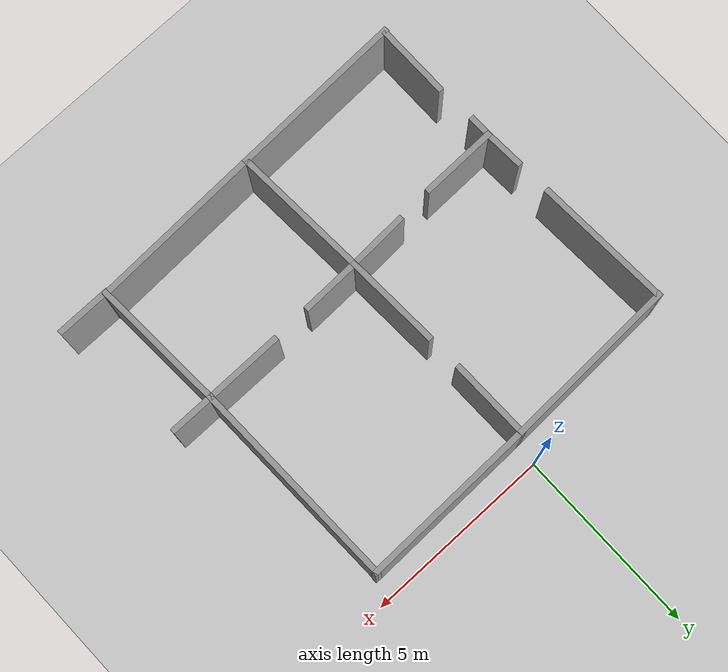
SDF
<sdf version="1.7">
 <world name="default">
  <light name="sun" type="directional">
   <pose>0 0 10 0 -0 0</pose>
   <diffuse>0.8 0.8 0.8 1</diffuse>
   <specular>0.2 0.2 0.2 1</specular>
   <attenuation>
    <range>1000</range>
    <constant>0.9</constant>
    <linear>0.01</linear>
    <quadratic>0.001</quadratic>
   </attenuation>
   <direction>-0.5 0.1 -0.9</direction>
   <spot><inner_angle>0</inner_angle><outer_angle>0</outer_angle><falloff>0</falloff></spot>
  </light>
  <model name="ground_plane">
   <static>1</static>
   <link name="link">
    <collision name="collision">
     <geometry><plane><normal>0 0 1</normal><size>100 100</size></plane></geometry>
     <surface>
      <contact><collide_bitmask>65535</collide_bitmask></contact>
      <friction><ode><mu>100</mu><mu2>50</mu2></ode></friction>
     </surface>
    </collision>
    <visual name="visual">
     <cast_shadows>0</cast_shadows>
     <geometry><plane><normal>0 0 1</normal><size>100 100</size></plane></geometry>
     <material>
      <script><uri>file://media/materials/scripts/gazebo.material</uri><name>Gazebo/Grey</name></script>
     </material>
    </visual>
   </link>
  </model>
  <gravity>0 0 -9.8</gravity>
  <magnetic_field>6e-06 2.3e-05 -4.2e-05</magnetic_field>
  <atmosphere type="adiabatic"/>
  <physics type="ode">
   <max_step_size>0.001</max_step_size>
   <real_time_factor>1</real_time_factor>
   <real_time_update_rate>1000</real_time_update_rate>
  </physics>
  <scene><ambient>0.4 0.4 0.4 1</ambient><background>0.7 0.7 0.7 1</background><shadows>1</shadows></scene>
  <spherical_coordinates>
   <surface_model>EARTH_WGS84</surface_model>
   <latitude_deg>0</latitude_deg>
   <longitude_deg>0</longitude_deg>
   <elevation>0</elevation>
   <heading_deg>0</heading_deg>
  </spherical_coordinates>
  <model name="Bordeaux_model">
   <pose>0.823348 -4.94039 0 0 -0 0</pose>
   <link name="Wall_0">
    <collision name="Wall_0_Collision">
     <geometry><box><size>2.19295 0.15 2.5</size></box></geometry>
     <pose>0 0 1.25 0 -0 0</pose>
    </collision>
    <visual name="Wall_0_Visual">
     <pose>0 0 1.25 0 -0 0</pose>
     <geometry><box><size>2.19295 0.15 2.5</size></box></geometry>
     <material>
      <script><uri>file://media/materials/scripts/gazebo.material</uri><name>Gazebo/Grey</name></script>
      <ambient>1 1 1 1</ambient>
     </material>
     <meta><layer>0</layer></meta>
    </visual>
    <pose>-0.802706 3.27041 0 0 -0 1.58202</pose>
   </link>
   <link name="Wall_1">
    <collision name="Wall_1_Collision">
     <geometry><box><size>4.75121 0.15 2.5</size></box></geometry>
     <pose>0 0 1.25 0 -0 0</pose>
    </collision>
    <visual name="Wall_1_Visual">
     <pose>0 0 1.25 0 -0 0</pose>
     <geometry><box><size>4.75121 0.15 2.5</size></box></geometry>
     <material>
      <script><uri>file://media/materials/scripts/gazebo.material</uri><name>Gazebo/Grey</name></script>
      <ambient>1 1 1 1</ambient>
     </material>
     <meta><layer>0</layer></meta>
    </visual>
    <pose>1.48603 4.33467 0 0 -0 0.018623</pose>
   </link>
   <link name="Wall_10">
    <collision name="Wall_10_Collision">
     <geometry><box><size>1.62867 0.15 2.5</size></box></geometry>
     <pose>0 0 1.25 0 -0 0</pose>
    </collision>
    <visual name="Wall_10_Visual">
     <pose>0 0 1.25 0 -0 0</pose>
     <geometry><box><size>1.62867 0.15 2.5</size></box></geometry>
     <material>
      <script><uri>file://media/materials/scripts/gazebo.material</uri><name>Gazebo/Grey</name></script>
      <ambient>1 1 1 1</ambient>
     </material>
     <meta><layer>0</layer></meta>
    </visual>
    <pose>0.072368 -1.16797 0 0 -0 0.023525</pose>
   </link>
   <link name="Wall_15">
    <collision name="Wall_15_Collision">
     <geometry><box><size>2.06988 0.15 2.5</size></box></geometry>
     <pose>0 0 1.25 0 -0 0</pose>
    </collision>
    <visual name="Wall_15_Visual">
     <pose>0 0 1.25 0 -0 0</pose>
     <geometry><box><size>2.06988 0.15 2.5</size></box></geometry>
     <material>
      <script><uri>file://media/materials/scripts/gazebo.material</uri><name>Gazebo/Grey</name></script>
      <ambient>1 1 1 1</ambient>
     </material>
     <meta><layer>0</layer></meta>
    </visual>
    <pose>-4.1135 -1.32232 0 0 -0 -3.12348</pose>
   </link>
   <link name="Wall_18">
    <collision name="Wall_18_Collision">
     <geometry><box><size>1.14009 0.15 2.5</size></box></geometry>
     <pose>0 0 1.25 0 -0 0</pose>
    </collision>
    <visual name="Wall_18_Visual">
     <pose>0 0 1.25 0 -0 0</pose>
     <geometry><box><size>1.14009 0.15 2.5</size></box></geometry>
     <material>
      <script><uri>file://media/materials/scripts/gazebo.material</uri><name>Gazebo/Grey</name></script>
      <ambient>1 1 1 1</ambient>
     </material>
     <meta><layer>0</layer></meta>
    </visual>
    <pose>-5.10372 -0.853844 0 0 -0 1.61472</pose>
   </link>
   <link name="Wall_24">
    <collision name="Wall_24_Collision">
     <geometry><box><size>3.66561 0.15 2.5</size></box></geometry>
     <pose>0 0 1.25 0 -0 0</pose>
    </collision>
    <visual name="Wall_24_Visual">
     <pose>0 0 1.25 0 -0 0</pose>
     <geometry><box><size>3.66561 0.15 2.5</size></box></geometry>
     <material>
      <script><uri>file://media/materials/scripts/gazebo.material</uri><name>Gazebo/Grey</name></script>
      <ambient>1 1 1 1</ambient>
     </material>
     <meta><layer>0</layer></meta>
    </visual>
    <pose>-5.24798 2.37481 0 0 -0 1.61659</pose>
   </link>
   <link name="Wall_29">
    <collision name="Wall_29_Collision">
     <geometry><box><size>4.66715 0.15 2.5</size></box></geometry>
     <pose>0 0 1.25 0 -0 0</pose>
    </collision>
    <visual name="Wall_29_Visual">
     <pose>0 0 1.25 0 -0 0</pose>
     <geometry><box><size>4.66715 0.15 2.5</size></box></geometry>
     <material>
      <script><uri>file://media/materials/scripts/gazebo.material</uri><name>Gazebo/Grey</name></script>
      <ambient>1 1 1 1</ambient>
     </material>
     <meta><layer>0</layer></meta>
    </visual>
    <pose>-3.08281 4.2113 0 0 -0 -3.10593</pose>
   </link>
   <link name="Wall_31">
    <collision name="Wall_31_Collision">
     <geometry><box><size>2.12312 0.15 2.5</size></box></geometry>
     <pose>0 0 1.25 0 -0 0</pose>
    </collision>
    <visual name="Wall_31_Visual">
     <pose>0 0 1.25 0 -0 0</pose>
     <geometry><box><size>2.12312 0.15 2.5</size></box></geometry>
     <material>
      <script><uri>file://media/materials/scripts/gazebo.material</uri><name>Gazebo/Grey</name></script>
      <ambient>1 1 1 1</ambient>
     </material>
     <meta><layer>0</layer></meta>
    </visual>
    <pose>2.87076 -1.12108 0 0 -0 0.002726</pose>
   </link>
   <link name="Wall_36">
    <collision name="Wall_36_Collision">
     <geometry><box><size>3.69296 0.15 2.5</size></box></geometry>
     <pose>0 0 1.25 0 -0 0</pose>
    </collision>
    <visual name="Wall_36_Visual">
     <pose>0 0 1.25 0 -0 0</pose>
     <geometry><box><size>3.69296 0.15 2.5</size></box></geometry>
     <material>
      <script><uri>file://media/materials/scripts/gazebo.material</uri><name>Gazebo/Grey</name></script>
      <ambient>1 1 1 1</ambient>
     </material>
     <meta><layer>0</layer></meta>
    </visual>
    <pose>-0.579263 -2.95468 0 0 -0 -1.52138</pose>
   </link>
   <link name="Wall_39">
    <collision name="Wall_39_Collision">
     <geometry><box><size>0.5 0.15 2.5</size></box></geometry>
     <pose>0 0 1.25 0 -0 0</pose>
    </collision>
    <visual name="Wall_39_Visual">
     <pose>0 0 1.25 0 -0 0</pose>
     <geometry><box><size>0.5 0.15 2.5</size></box></geometry>
     <material>
      <script><uri>file://media/materials/scripts/gazebo.material</uri><name>Gazebo/Grey</name></script>
      <ambient>1 1 1 1</ambient>
     </material>
     <meta><layer>0</layer></meta>
    </visual>
    <pose>-5.07922 -1.67326 0 0 -0 1.5708</pose>
   </link>
   <link name="Wall_4">
    <collision name="Wall_4_Collision">
     <geometry><box><size>2.58883 0.15 2.5</size></box></geometry>
     <pose>0 0 1.25 0 -0 0</pose>
    </collision>
    <visual name="Wall_4_Visual">
     <pose>0 0 1.25 0 -0 0</pose>
     <geometry><box><size>2.58883 0.15 2.5</size></box></geometry>
     <material>
      <script><uri>file://media/materials/scripts/gazebo.material</uri><name>Gazebo/Grey</name></script>
      <ambient>1 1 1 1</ambient>
     </material>
     <meta><layer>0</layer></meta>
    </visual>
    <pose>-0.714589 0.033113 0 0 -0 -1.53157</pose>
   </link>
   <link name="Wall_43">
    <collision name="Wall_43_Collision">
     <geometry><box><size>2 0.15 2.5</size></box></geometry>
     <pose>0 0 1.25 0 -0 0</pose>
    </collision>
    <visual name="Wall_43_Visual">
     <pose>0 0 1.25 0 -0 0</pose>
     <geometry><box><size>2 0.15 2.5</size></box></geometry>
     <material>
      <script><uri>file://media/materials/scripts/gazebo.material</uri><name>Gazebo/Grey</name></script>
      <ambient>1 1 1 1</ambient>
     </material>
     <meta><layer>0</layer></meta>
    </visual>
    <pose>-5.00966 -3.86891 0 0 -0 -1.5708</pose>
   </link>
   <link name="Wall_45">
    <collision name="Wall_45_Collision">
     <geometry><box><size>4.69561 0.15 2.5</size></box></geometry>
     <pose>0 0 1.25 0 -0 0</pose>
    </collision>
    <visual name="Wall_45_Visual">
     <pose>0 0 1.25 0 -0 0</pose>
     <geometry><box><size>4.69561 0.15 2.5</size></box></geometry>
     <material>
      <script><uri>file://media/materials/scripts/gazebo.material</uri><name>Gazebo/Grey</name></script>
      <ambient>1 1 1 1</ambient>
     </material>
     <meta><layer>0</layer></meta>
    </visual>
    <pose>-2.7635 -4.79357 0 0 -0 -3.11098</pose>
   </link>
   <link name="Wall_48">
    <collision name="Wall_48_Collision">
     <geometry><box><size>4.65388 0.15 2.5</size></box></geometry>
     <pose>0 0 1.25 0 -0 0</pose>
    </collision>
    <visual name="Wall_48_Visual">
     <pose>0 0 1.25 0 -0 0</pose>
     <geometry><box><size>4.65388 0.15 2.5</size></box></geometry>
     <material>
      <script><uri>file://media/materials/scripts/gazebo.material</uri><name>Gazebo/Grey</name></script>
      <ambient>1 1 1 1</ambient>
     </material>
     <meta><layer>0</layer></meta>
    </visual>
    <pose>1.76748 -4.64475 0 0 -0 0.035203</pose>
   </link>
   <link name="Wall_52">
    <collision name="Wall_52_Collision">
     <geometry><box><size>5.64611 0.15 2.5</size></box></geometry>
     <pose>0 0 1.25 0 -0 0</pose>
    </collision>
    <visual name="Wall_52_Visual">
     <pose>0 0 1.25 0 -0 0</pose>
     <geometry><box><size>5.64611 0.15 2.5</size></box></geometry>
     <material>
      <script><uri>file://media/materials/scripts/gazebo.material</uri><name>Gazebo/Grey</name></script>
      <ambient>1 1 1 1</ambient>
     </material>
     <meta><layer>0</layer></meta>
    </visual>
    <pose>3.81303 1.62956 0 0 -0 -1.55468</pose>
   </link>
   <link name="Wall_57">
    <collision name="Wall_57_Collision">
     <geometry><box><size>3.60781 0.15 2.5</size></box></geometry>
     <pose>0 0 1.25 0 -0 0</pose>
    </collision>
    <visual name="Wall_57_Visual">
     <pose>0 0 1.25 0 -0 0</pose>
     <geometry><box><size>3.60781 0.15 2.5</size></box></geometry>
     <material>
      <script><uri>file://media/materials/scripts/gazebo.material</uri><name>Gazebo/Grey</name></script>
      <ambient>1 1 1 1</ambient>
     </material>
     <meta><layer>0</layer></meta>
    </visual>
    <pose>3.93369 -2.8456 0 0 -0 -1.52661</pose>
   </link>
   <link name="Wall_59">
    <collision name="Wall_59_Collision">
     <geometry><box><size>1.25 0.15 2.5</size></box></geometry>
     <pose>0 0 1.25 0 -0 0</pose>
    </collision>
    <visual name="Wall_59_Visual">
     <pose>0 0 1.25 0 -0 0</pose>
     <geometry><box><size>1.25 0.15 2.5</size></box></geometry>
     <material>
      <script><uri>file://media/materials/scripts/gazebo.material</uri><name>Gazebo/Grey</name></script>
      <ambient>1 1 1 1</ambient>
     </material>
     <meta><layer>0</layer></meta>
    </visual>
    <pose>4.40731 -1.11838 0 0 -0 0</pose>
   </link>
   <link name="Wall_61">
    <collision name="Wall_61_Collision">
     <geometry><box><size>1.5 0.15 2.5</size></box></geometry>
     <pose>0 0 1.25 0 -0 0</pose>
    </collision>
    <visual name="Wall_61_Visual">
     <pose>0 0 1.25 0 -0 0</pose>
     <geometry><box><size>1.5 0.15 2.5</size></box></geometry>
     <material>
      <script><uri>file://media/materials/scripts/gazebo.material</uri><name>Gazebo/Grey</name></script>
      <ambient>1 1 1 1</ambient>
     </material>
     <meta><layer>0</layer></meta>
    </visual>
    <pose>4.66758 -4.59031 0 0 -0 0</pose>
   </link>
   <link name="Wall_9">
    <collision name="Wall_9_Collision">
     <geometry><box><size>1.65586 0.15 2.5</size></box></geometry>
     <pose>0 0 1.25 0 -0 0</pose>
    </collision>
    <visual name="Wall_9_Visual">
     <pose>0 0 1.25 0 -0 0</pose>
     <geometry><box><size>1.65586 0.15 2.5</size></box></geometry>
     <material>
      <script><uri>file://media/materials/scripts/gazebo.material</uri><name>Gazebo/Grey</name></script>
      <ambient>1 1 1 1</ambient>
     </material>
     <meta><layer>0</layer></meta>
    </visual>
    <pose>-1.41894 -1.21906 0 0 -0 0.044768</pose>
   </link>
   <static>1</static>
  </model>
 </world>
</sdf>
